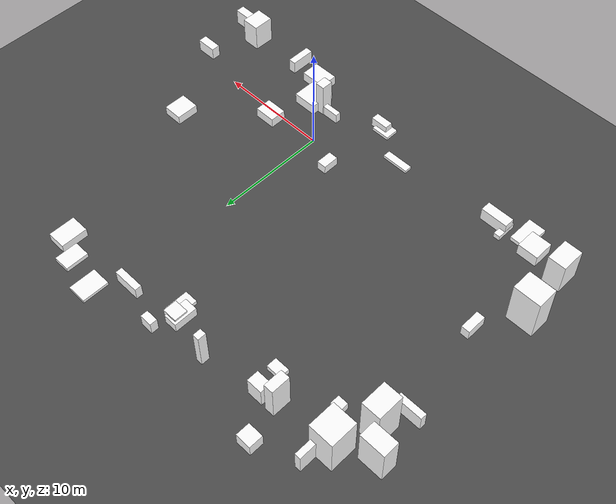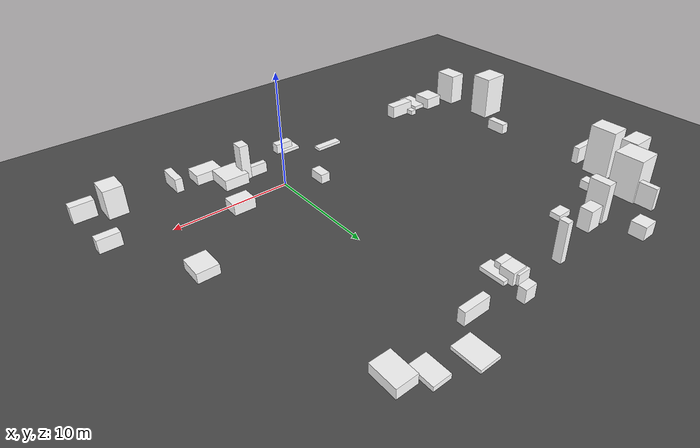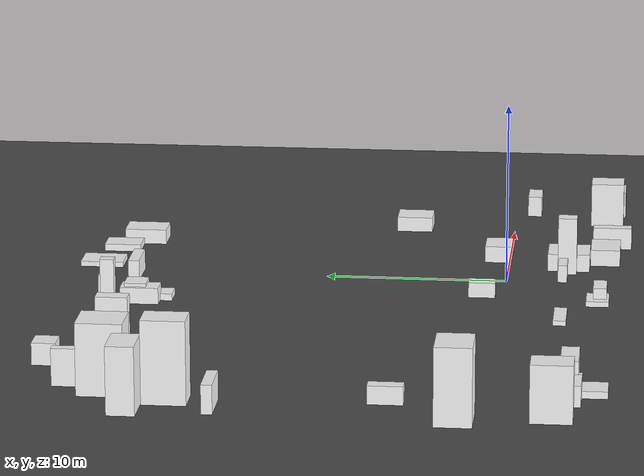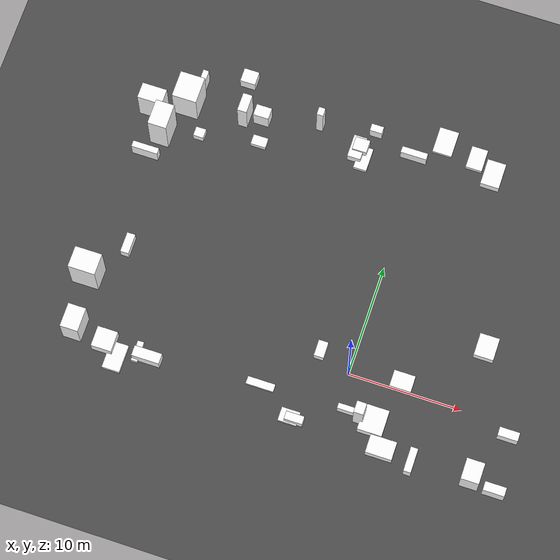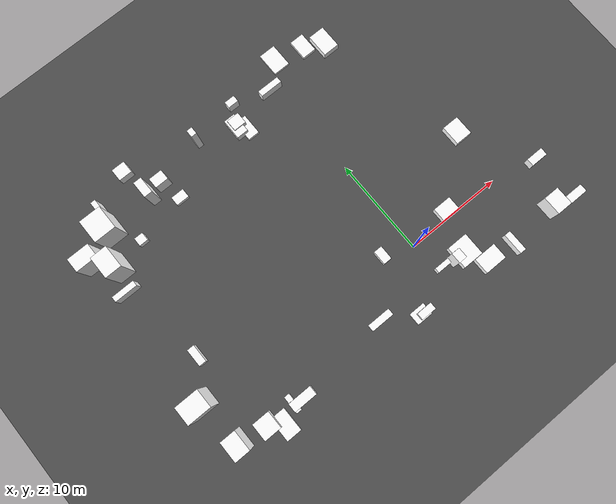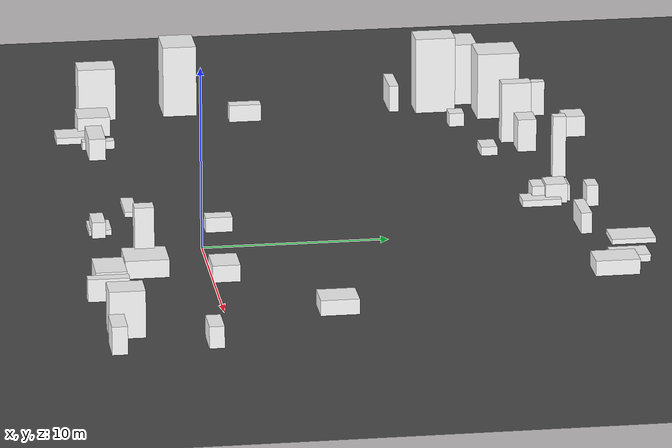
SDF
<sdf version="1.6">
 <world name="mirror_edge_world">
  <model name="ground_plane">
   <static>true</static>
   <link name="link">
    <collision name="collision">
     <geometry><plane><normal>0 0 1</normal><size>100 100</size></plane></geometry>
    </collision>
    <visual name="visual">
     <geometry><plane><normal>0 0 1</normal><size>100 100</size></plane></geometry>
     <material>
      <ambient>0.3 0.3 0.3 1</ambient>
      <diffuse>0.3 0.3 0.3 1</diffuse>
      <specular>0.5 0.5 0.5 1</specular>
      <emissive>0 0 0 1</emissive>
     </material>
    </visual>
   </link>
  </model>
  <model name="block_2_50">
   <static>true</static>
   <link name="link">
    <pose>0.8098829669846737 -3.090572331355331 0.481720318853926 0 0 0</pose>
    <collision name="collision">
     <geometry><box><size>1.527366387723425 0.5042161812538453 0.963440637707852</size></box></geometry>
    </collision>
    <visual name="visual">
     <geometry><box><size>1.527366387723425 0.5042161812538453 0.963440637707852</size></box></geometry>
     <material>
      <ambient>1 1 1 1</ambient>
      <diffuse>1 1 1 1</diffuse>
      <specular>0.9 0.9 0.9 1</specular>
      <emissive>0.05 0.05 0.05 1</emissive>
     </material>
    </visual>
   </link>
  </model>
  <model name="block_2_51">
   <static>true</static>
   <link name="link">
    <pose>14.65995122079105 -5.948064546465821 0.7537979952017388 0 0 0</pose>
    <visual name="visual">
     <geometry><box><size>1.880618389340572 0.8043495900918085 1.5075959904034777</size></box></geometry>
     <material>
      <ambient>1 1 1 1</ambient>
      <diffuse>1 1 1 1</diffuse>
      <specular>0.9 0.9 0.9 1</specular>
      <emissive>0.05 0.05 0.05 1</emissive>
     </material>
    </visual>
   </link>
  </model>
  <model name="block_2_54">
   <static>true</static>
   <link name="link">
    <pose>4.706253490817126 22.193586879557895 0.2004369189255712 0 0 0</pose>
    <collision name="collision">
     <geometry><box><size>1.4615097763915963 2.0584305917626997 0.4008738378511424</size></box></geometry>
    </collision>
    <visual name="visual">
     <geometry><box><size>1.4615097763915963 2.0584305917626997 0.4008738378511424</size></box></geometry>
     <material>
      <ambient>1 1 1 1</ambient>
      <diffuse>1 1 1 1</diffuse>
      <specular>0.9 0.9 0.9 1</specular>
      <emissive>0.05 0.05 0.05 1</emissive>
     </material>
    </visual>
   </link>
  </model>
  <model name="block_2_55">
   <static>true</static>
   <link name="link">
    <pose>-15.893200475135684 19.60190934968109 1.7274161127464103 0 0 0</pose>
    <visual name="visual">
     <geometry><box><size>0.8445776882741067 1.6799346331303522 3.4548322254928205</size></box></geometry>
     <material>
      <ambient>1 1 1 1</ambient>
      <diffuse>1 1 1 1</diffuse>
      <specular>0.9 0.9 0.9 1</specular>
      <emissive>0.05 0.05 0.05 1</emissive>
     </material>
    </visual>
   </link>
  </model>
  <model name="block_2_57">
   <static>true</static>
   <link name="link">
    <pose>-2.8447255773969715 1.209892568164463 0.4179290024858638 0 0 0</pose>
    <collision name="collision">
     <geometry><box><size>0.8676730318564452 1.4567778469290456 0.8358580049717276</size></box></geometry>
    </collision>
    <visual name="visual">
     <geometry><box><size>0.8676730318564452 1.4567778469290456 0.8358580049717276</size></box></geometry>
     <material>
      <ambient>1 1 1 1</ambient>
      <diffuse>1 1 1 1</diffuse>
      <specular>0.9 0.9 0.9 1</specular>
      <emissive>0.05 0.05 0.05 1</emissive>
     </material>
    </visual>
   </link>
  </model>
  <model name="block_2_62">
   <static>true</static>
   <link name="link">
    <pose>1.641529449509271 22.889843387219027 0.14126826278776594 0 0 0</pose>
    <collision name="collision">
     <geometry><box><size>1.7457525363676685 2.396860174804657 0.2825365255755319</size></box></geometry>
    </collision>
    <visual name="visual">
     <geometry><box><size>1.7457525363676685 2.396860174804657 0.2825365255755319</size></box></geometry>
     <material>
      <ambient>1 1 1 1</ambient>
      <diffuse>1 1 1 1</diffuse>
      <specular>0.9 0.9 0.9 1</specular>
      <emissive>0.05 0.05 0.05 1</emissive>
     </material>
    </visual>
   </link>
  </model>
  <model name="block_2_63">
   <static>true</static>
   <link name="link">
    <pose>2.0145521736727687 -3.3013396557126606 1.6191750365461166 0 0 0</pose>
    <visual name="visual">
     <geometry><box><size>0.8516244945422202 1.0458215020954742 3.238350073092233</size></box></geometry>
     <material>
      <ambient>1 1 1 1</ambient>
      <diffuse>1 1 1 1</diffuse>
      <specular>0.9 0.9 0.9 1</specular>
      <emissive>0.05 0.05 0.05 1</emissive>
     </material>
    </visual>
   </link>
  </model>
  <model name="block_2_64">
   <static>true</static>
   <link name="link">
    <pose>-21.663844325425057 4.9622825317071575 0.49135844997342504 0 0 0</pose>
    <collision name="collision">
     <geometry><box><size>0.7457801157521629 1.8277754293282034 0.9827168999468501</size></box></geometry>
    </collision>
    <visual name="visual">
     <geometry><box><size>0.7457801157521629 1.8277754293282034 0.9827168999468501</size></box></geometry>
     <material>
      <ambient>1 1 1 1</ambient>
      <diffuse>1 1 1 1</diffuse>
      <specular>0.9 0.9 0.9 1</specular>
      <emissive>0.05 0.05 0.05 1</emissive>
     </material>
    </visual>
   </link>
  </model>
  <model name="block_2_65">
   <static>true</static>
   <link name="link">
    <pose>3.268858557038616 -3.3633220146153104 0.49202847868242827 0 0 0</pose>
    <collision name="collision">
     <geometry><box><size>2.1648311377084957 2.340755523515999 0.9840569573648565</size></box></geometry>
    </collision>
    <visual name="visual">
     <geometry><box><size>2.1648311377084957 2.340755523515999 0.9840569573648565</size></box></geometry>
     <material>
      <ambient>1 1 1 1</ambient>
      <diffuse>1 1 1 1</diffuse>
      <specular>0.9 0.9 0.9 1</specular>
      <emissive>0.05 0.05 0.05 1</emissive>
     </material>
    </visual>
   </link>
  </model>
  <model name="block_3_0">
   <static>true</static>
   <link name="link">
    <pose>-17.678618433667992 -3.818225260669403 0.23840527973943298 0 0 0</pose>
    <collision name="collision">
     <geometry><box><size>0.5652995485660002 1.8227127415712698 0.47681055947886597</size></box></geometry>
    </collision>
    <visual name="visual">
     <geometry><box><size>0.5652995485660002 1.8227127415712698 0.47681055947886597</size></box></geometry>
     <material>
      <ambient>1 1 1 1</ambient>
      <diffuse>1 1 1 1</diffuse>
      <specular>0.9 0.9 0.9 1</specular>
      <emissive>0.05 0.05 0.05 1</emissive>
     </material>
    </visual>
   </link>
  </model>
  <model name="block_3_2">
   <static>true</static>
   <link name="link">
    <pose>-5.559152264632264 19.728543940450283 0.4523970038517947 0 0 0</pose>
    <collision name="collision">
     <geometry><box><size>1.198668174628761 2.0973826185861872 0.9047940077035894</size></box></geometry>
    </collision>
    <visual name="visual">
     <geometry><box><size>1.198668174628761 2.0973826185861872 0.9047940077035894</size></box></geometry>
     <material>
      <ambient>1 1 1 1</ambient>
      <diffuse>1 1 1 1</diffuse>
      <specular>0.9 0.9 0.9 1</specular>
      <emissive>0.05 0.05 0.05 1</emissive>
     </material>
    </visual>
   </link>
  </model>
  <model name="block_3_4">
   <static>true</static>
   <link name="link">
    <pose>10.488309410969151 5.83637029855593 0.42055144941603273 0 0 0</pose>
    <collision name="collision">
     <geometry><box><size>1.7388635734597684 2.031938803802169 0.8411028988320655</size></box></geometry>
    </collision>
    <visual name="visual">
     <geometry><box><size>1.7388635734597684 2.031938803802169 0.8411028988320655</size></box></geometry>
     <material>
      <ambient>1 1 1 1</ambient>
      <diffuse>1 1 1 1</diffuse>
      <specular>0.9 0.9 0.9 1</specular>
      <emissive>0.05 0.05 0.05 1</emissive>
     </material>
    </visual>
   </link>
  </model>
  <model name="block_3_5">
   <static>true</static>
   <link name="link">
    <pose>-23.82729101570601 17.828806424396195 1.7910947486039832 0 0 0</pose>
    <visual name="visual">
     <geometry><box><size>2.2365818321069577 1.4448735672219761 3.5821894972079664</size></box></geometry>
     <material>
      <ambient>1 1 1 1</ambient>
      <diffuse>1 1 1 1</diffuse>
      <specular>0.9 0.9 0.9 1</specular>
      <emissive>0.05 0.05 0.05 1</emissive>
     </material>
    </visual>
   </link>
  </model>
  <model name="block_3_6">
   <static>true</static>
   <link name="link">
    <pose>-23.113054188972207 13.620665459440477 0.7677556339869382 0 0 0</pose>
    <visual name="visual">
     <geometry><box><size>2.3789722471768635 0.567301659499867 1.5355112679738765</size></box></geometry>
     <material>
      <ambient>1 1 1 1</ambient>
      <diffuse>1 1 1 1</diffuse>
      <specular>0.9 0.9 0.9 1</specular>
      <emissive>0.05 0.05 0.05 1</emissive>
     </material>
    </visual>
   </link>
  </model>
  <model name="block_3_8">
   <static>true</static>
   <link name="link">
    <pose>-9.329365104186014 20.897088310910963 1.7469880395212145 0 0 0</pose>
    <visual name="visual">
     <geometry><box><size>0.5765625660582252 0.73872362770506 3.493976079042429</size></box></geometry>
     <material>
      <ambient>1 1 1 1</ambient>
      <diffuse>1 1 1 1</diffuse>
      <specular>0.9 0.9 0.9 1</specular>
      <emissive>0.05 0.05 0.05 1</emissive>
     </material>
    </visual>
   </link>
  </model>
  <model name="block_3_11">
   <static>true</static>
   <link name="link">
    <pose>-4.427450971296487 21.819563758112736 0.5957560891254922 0 0 0</pose>
    <collision name="collision">
     <geometry><box><size>1.1053702533272185 0.6700244231894366 1.1915121782509843</size></box></geometry>
    </collision>
    <visual name="visual">
     <geometry><box><size>1.1053702533272185 0.6700244231894366 1.1915121782509843</size></box></geometry>
     <material>
      <ambient>1 1 1 1</ambient>
      <diffuse>1 1 1 1</diffuse>
      <specular>0.9 0.9 0.9 1</specular>
      <emissive>0.05 0.05 0.05 1</emissive>
     </material>
    </visual>
   </link>
  </model>
  <model name="block_3_14">
   <static>true</static>
   <link name="link">
    <pose>-6.806416801041145 -3.20506378054507 0.13659756402188572 0 0 0</pose>
    <collision name="collision">
     <geometry><box><size>2.4600979030579366 0.6906162012204522 0.27319512804377144</size></box></geometry>
    </collision>
    <visual name="visual">
     <geometry><box><size>2.4600979030579366 0.6906162012204522 0.27319512804377144</size></box></geometry>
     <material>
      <ambient>1 1 1 1</ambient>
      <diffuse>1 1 1 1</diffuse>
      <specular>0.9 0.9 0.9 1</specular>
      <emissive>0.05 0.05 0.05 1</emissive>
     </material>
    </visual>
   </link>
  </model>
  <model name="block_3_15">
   <static>true</static>
   <link name="link">
    <pose>-20.614851195202288 -3.8390956445144413 0.5617584832291174 0 0 0</pose>
    <visual name="visual">
     <geometry><box><size>1.8252486822543141 1.8307164405987868 1.1235169664582347</size></box></geometry>
     <material>
      <ambient>1 1 1 1</ambient>
      <diffuse>1 1 1 1</diffuse>
      <specular>0.9 0.9 0.9 1</specular>
      <emissive>0.05 0.05 0.05 1</emissive>
     </material>
    </visual>
   </link>
  </model>
  <model name="block_3_21">
   <static>true</static>
   <link name="link">
    <pose>4.599235130145267 -5.39109628485463 0.4608091937582092 0 0 0</pose>
    <collision name="collision">
     <geometry><box><size>2.3268720427107192 1.6447738401725842 0.9216183875164184</size></box></geometry>
    </collision>
    <visual name="visual">
     <geometry><box><size>2.3268720427107192 1.6447738401725842 0.9216183875164184</size></box></geometry>
     <material>
      <ambient>1 1 1 1</ambient>
      <diffuse>1 1 1 1</diffuse>
      <specular>0.9 0.9 0.9 1</specular>
      <emissive>0.05 0.05 0.05 1</emissive>
     </material>
    </visual>
   </link>
  </model>
  <model name="block_3_22">
   <static>true</static>
   <link name="link">
    <pose>12.489389746060262 -5.316953222595925 1.269465802872953 0 0 0</pose>
    <visual name="visual">
     <geometry><box><size>1.5894571518314256 1.8743698255175414 2.538931605745906</size></box></geometry>
     <material>
      <ambient>1 1 1 1</ambient>
      <diffuse>1 1 1 1</diffuse>
      <specular>0.9 0.9 0.9 1</specular>
      <emissive>0.05 0.05 0.05 1</emissive>
     </material>
    </visual>
   </link>
  </model>
  <model name="block_3_26">
   <static>true</static>
   <link name="link">
    <pose>-24.01220210047378 1.3947223854216428 2.0540346727078016 0 0 0</pose>
    <visual name="visual">
     <geometry><box><size>2.4186065509065657 1.9163637495268995 4.108069345415603</size></box></geometry>
     <material>
      <ambient>1 1 1 1</ambient>
      <diffuse>1 1 1 1</diffuse>
      <specular>0.9 0.9 0.9 1</specular>
      <emissive>0.05 0.05 0.05 1</emissive>
     </material>
    </visual>
   </link>
  </model>
  <model name="block_3_27">
   <static>true</static>
   <link name="link">
    <pose>-19.17699905642565 16.736216090673096 0.3878704375916674 0 0 0</pose>
    <collision name="collision">
     <geometry><box><size>0.9213955631657709 0.864323186631677 0.7757408751833348</size></box></geometry>
    </collision>
    <visual name="visual">
     <geometry><box><size>0.9213955631657709 0.864323186631677 0.7757408751833348</size></box></geometry>
     <material>
      <ambient>1 1 1 1</ambient>
      <diffuse>1 1 1 1</diffuse>
      <specular>0.9 0.9 0.9 1</specular>
      <emissive>0.05 0.05 0.05 1</emissive>
     </material>
    </visual>
   </link>
  </model>
  <model name="block_3_28">
   <static>true</static>
   <link name="link">
    <pose>-5.2880123984372815 19.97588873595822 0.5425511569635673 0 0 0</pose>
    <collision name="collision">
     <geometry><box><size>1.30971327690931 1.199999492709777 1.0851023139271345</size></box></geometry>
    </collision>
    <visual name="visual">
     <geometry><box><size>1.30971327690931 1.199999492709777 1.0851023139271345</size></box></geometry>
     <material>
      <ambient>1 1 1 1</ambient>
      <diffuse>1 1 1 1</diffuse>
      <specular>0.9 0.9 0.9 1</specular>
      <emissive>0.05 0.05 0.05 1</emissive>
     </material>
    </visual>
   </link>
  </model>
  <model name="block_3_29">
   <static>true</static>
   <link name="link">
    <pose>-22.299922130330675 15.93632875825972 2.1993840061522785 0 0 0</pose>
    <visual name="visual">
     <geometry><box><size>1.6821207041183064 2.280590790671895 4.398768012304557</size></box></geometry>
     <material>
      <ambient>1 1 1 1</ambient>
      <diffuse>1 1 1 1</diffuse>
      <specular>0.9 0.9 0.9 1</specular>
      <emissive>0.05 0.05 0.05 1</emissive>
     </material>
    </visual>
   </link>
  </model>
  <model name="block_3_32">
   <static>true</static>
   <link name="link">
    <pose>-4.787786191822594 19.10375545109262 0.18697165160218404 0 0 0</pose>
    <collision name="collision">
     <geometry><box><size>1.1947662860048567 2.1511046608327913 0.3739433032043681</size></box></geometry>
    </collision>
    <visual name="visual">
     <geometry><box><size>1.1947662860048567 2.1511046608327913 0.3739433032043681</size></box></geometry>
     <material>
      <ambient>1 1 1 1</ambient>
      <diffuse>1 1 1 1</diffuse>
      <specular>0.9 0.9 0.9 1</specular>
      <emissive>0.05 0.05 0.05 1</emissive>
     </material>
    </visual>
   </link>
  </model>
  <model name="block_3_33">
   <static>true</static>
   <link name="link">
    <pose>-3.6136994138803793 -5.1402424249953835 0.1457082553472635 0 0 0</pose>
    <collision name="collision">
     <geometry><box><size>1.6649279633648149 1.232973522667332 0.291416510694527</size></box></geometry>
    </collision>
    <visual name="visual">
     <geometry><box><size>1.6649279633648149 1.232973522667332 0.291416510694527</size></box></geometry>
     <material>
      <ambient>1 1 1 1</ambient>
      <diffuse>1 1 1 1</diffuse>
      <specular>0.9 0.9 0.9 1</specular>
      <emissive>0.05 0.05 0.05 1</emissive>
     </material>
    </visual>
   </link>
  </model>
  <model name="block_3_36">
   <static>true</static>
   <link name="link">
    <pose>-14.389935838404863 19.91886613520759 0.9345903192161729 0 0 0</pose>
    <visual name="visual">
     <geometry><box><size>1.391254050660013 1.0555381043232972 1.8691806384323457</size></box></geometry>
     <material>
      <ambient>1 1 1 1</ambient>
      <diffuse>1 1 1 1</diffuse>
      <specular>0.9 0.9 0.9 1</specular>
      <emissive>0.05 0.05 0.05 1</emissive>
     </material>
    </visual>
   </link>
  </model>
  <model name="block_3_39">
   <static>true</static>
   <link name="link">
    <pose>-13.950487314068766 17.711800657902405 0.25088671875252716 0 0 0</pose>
    <collision name="collision">
     <geometry><box><size>1.3562402530085742 0.9232346859863068 0.5017734375050543</size></box></geometry>
    </collision>
    <visual name="visual">
     <geometry><box><size>1.3562402530085742 0.9232346859863068 0.5017734375050543</size></box></geometry>
     <material>
      <ambient>1 1 1 1</ambient>
      <diffuse>1 1 1 1</diffuse>
      <specular>0.9 0.9 0.9 1</specular>
      <emissive>0.05 0.05 0.05 1</emissive>
     </material>
    </visual>
   </link>
  </model>
  <model name="block_3_41">
   <static>true</static>
   <link name="link">
    <pose>-19.335124057042677 -4.830594351923744 0.19438882041676547 0 0 0</pose>
    <collision name="collision">
     <geometry><box><size>1.5795126460652469 2.480301300457571 0.38877764083353095</size></box></geometry>
    </collision>
    <visual name="visual">
     <geometry><box><size>1.5795126460652469 2.480301300457571 0.38877764083353095</size></box></geometry>
     <material>
      <ambient>1 1 1 1</ambient>
      <diffuse>1 1 1 1</diffuse>
      <specular>0.9 0.9 0.9 1</specular>
      <emissive>0.05 0.05 0.05 1</emissive>
     </material>
    </visual>
   </link>
  </model>
  <model name="block_3_44">
   <static>true</static>
   <link name="link">
    <pose>-0.6240966570873319 20.679350614665218 0.5818526635430461 0 0 0</pose>
    <collision name="collision">
     <geometry><box><size>2.341663736232398 0.606216704751956 1.1637053270860922</size></box></geometry>
    </collision>
    <visual name="visual">
     <geometry><box><size>2.341663736232398 0.606216704751956 1.1637053270860922</size></box></geometry>
     <material>
      <ambient>1 1 1 1</ambient>
      <diffuse>1 1 1 1</diffuse>
      <specular>0.9 0.9 0.9 1</specular>
      <emissive>0.05 0.05 0.05 1</emissive>
     </material>
    </visual>
   </link>
  </model>
  <model name="block_3_45">
   <static>true</static>
   <link name="link">
    <pose>-20.345870320604273 20.784767978077934 1.000580283556703 0 0 0</pose>
    <visual name="visual">
     <geometry><box><size>0.5221799277947858 2.4859688360877863 2.001160567113406</size></box></geometry>
     <material>
      <ambient>1 1 1 1</ambient>
      <diffuse>1 1 1 1</diffuse>
      <specular>0.9 0.9 0.9 1</specular>
      <emissive>0.05 0.05 0.05 1</emissive>
     </material>
    </visual>
   </link>
  </model>
  <model name="block_3_46">
   <static>true</static>
   <link name="link">
    <pose>-23.449723249737744 -3.372375382668074 1.515937649669945 0 0 0</pose>
    <visual name="visual">
     <geometry><box><size>1.6036389210812487 2.1409017691855765 3.03187529933989</size></box></geometry>
     <material>
      <ambient>1 1 1 1</ambient>
      <diffuse>1 1 1 1</diffuse>
      <specular>0.9 0.9 0.9 1</specular>
      <emissive>0.05 0.05 0.05 1</emissive>
     </material>
    </visual>
   </link>
  </model>
  <model name="block_3_48">
   <static>true</static>
   <link name="link">
    <pose>4.584115155636976 0.6638440111039383 0.4609561723214917 0 0 0</pose>
    <collision name="collision">
     <geometry><box><size>1.8948994896270983 1.4778505514884361 0.9219123446429834</size></box></geometry>
    </collision>
    <visual name="visual">
     <geometry><box><size>1.8948994896270983 1.4778505514884361 0.9219123446429834</size></box></geometry>
     <material>
      <ambient>1 1 1 1</ambient>
      <diffuse>1 1 1 1</diffuse>
      <specular>0.9 0.9 0.9 1</specular>
      <emissive>0.05 0.05 0.05 1</emissive>
     </material>
    </visual>
   </link>
  </model>
  <model name="block_3_52">
   <static>true</static>
   <link name="link">
    <pose>-16.710666003160007 -4.05376979150947 0.6190394588765147 0 0 0</pose>
    <collision name="collision">
     <geometry><box><size>2.470540930218527 0.93682249959349 1.2380789177530294</size></box></geometry>
    </collision>
    <visual name="visual">
     <geometry><box><size>2.470540930218527 0.93682249959349 1.2380789177530294</size></box></geometry>
     <material>
      <ambient>1 1 1 1</ambient>
      <diffuse>1 1 1 1</diffuse>
      <specular>0.9 0.9 0.9 1</specular>
      <emissive>0.05 0.05 0.05 1</emissive>
     </material>
    </visual>
   </link>
  </model>
  <model name="block_3_54">
   <static>true</static>
   <link name="link">
    <pose>-3.12263079453885 -5.259540406356683 0.44463219674048843 0 0 0</pose>
    <collision name="collision">
     <geometry><box><size>1.6108693574863857 0.7291104625494234 0.8892643934809769</size></box></geometry>
    </collision>
    <visual name="visual">
     <geometry><box><size>1.6108693574863857 0.7291104625494234 0.8892643934809769</size></box></geometry>
     <material>
      <ambient>1 1 1 1</ambient>
      <diffuse>1 1 1 1</diffuse>
      <specular>0.9 0.9 0.9 1</specular>
      <emissive>0.05 0.05 0.05 1</emissive>
     </material>
    </visual>
   </link>
  </model>
  <model name="block_3_55">
   <static>true</static>
   <link name="link">
    <pose>-16.62835846240875 23.00831244853206 0.5956395444750415 0 0 0</pose>
    <visual name="visual">
     <geometry><box><size>1.3753750493145045 1.2585089104197782 1.191279088950083</size></box></geometry>
     <material>
      <ambient>1 1 1 1</ambient>
      <diffuse>1 1 1 1</diffuse>
      <specular>0.9 0.9 0.9 1</specular>
      <emissive>0.05 0.05 0.05 1</emissive>
     </material>
    </visual>
   </link>
  </model>
  <model name="block_3_56">
   <static>true</static>
   <link name="link">
    <pose>-20.99482086241567 19.322734907399123 1.9158604122476925 0 0 0</pose>
    <visual name="visual">
     <geometry><box><size>2.209318720765015 2.4055974836543195 3.831720824495385</size></box></geometry>
     <material>
      <ambient>1 1 1 1</ambient>
      <diffuse>1 1 1 1</diffuse>
      <specular>0.9 0.9 0.9 1</specular>
      <emissive>0.05 0.05 0.05 1</emissive>
     </material>
    </visual>
   </link>
  </model>
  <model name="block_3_58">
   <static>true</static>
   <link name="link">
    <pose>7.29328703368795 -5.711572143771798 0.6174784933838062 0 0 0</pose>
    <visual name="visual">
     <geometry><box><size>0.652084839138672 2.1886430355759723 1.2349569867676125</size></box></geometry>
     <material>
      <ambient>1 1 1 1</ambient>
      <diffuse>1 1 1 1</diffuse>
      <specular>0.9 0.9 0.9 1</specular>
      <emissive>0.05 0.05 0.05 1</emissive>
     </material>
    </visual>
   </link>
  </model>
  <model name="block_3_64">
   <static>true</static>
   <link name="link">
    <pose>14.440054477032021 -0.9995303406931386 0.5865687456592605 0 0 0</pose>
    <visual name="visual">
     <geometry><box><size>1.7779119395727678 0.7867081372145359 1.173137491318521</size></box></geometry>
     <material>
      <ambient>1 1 1 1</ambient>
      <diffuse>1 1 1 1</diffuse>
      <specular>0.9 0.9 0.9 1</specular>
      <emissive>0.05 0.05 0.05 1</emissive>
     </material>
    </visual>
   </link>
  </model>
  <model name="block_3_66">
   <static>true</static>
   <link name="link">
    <pose>6.493798119535519 21.10593010398495 0.4177619426295089 0 0 0</pose>
    <collision name="collision">
     <geometry><box><size>1.6793311523722991 2.3691556410084234 0.8355238852590178</size></box></geometry>
    </collision>
    <visual name="visual">
     <geometry><box><size>1.6793311523722991 2.3691556410084234 0.8355238852590178</size></box></geometry>
     <material>
      <ambient>1 1 1 1</ambient>
      <diffuse>1 1 1 1</diffuse>
      <specular>0.9 0.9 0.9 1</specular>
      <emissive>0.05 0.05 0.05 1</emissive>
     </material>
    </visual>
   </link>
  </model>
 </world>
</sdf>
